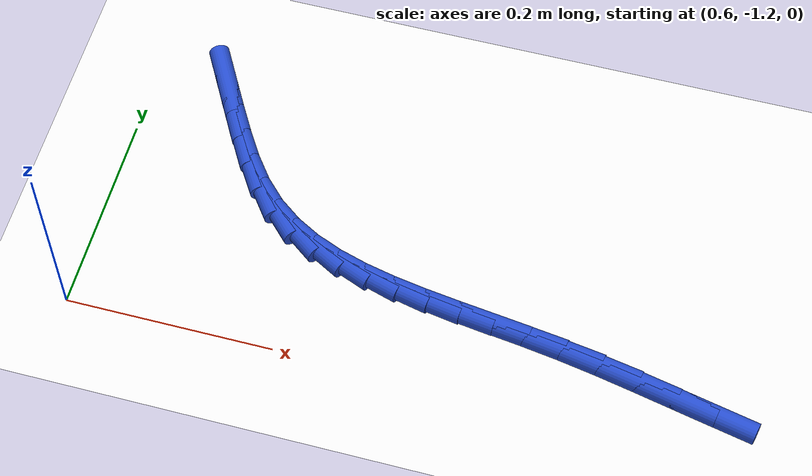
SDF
<sdf version="1.6">
 <world name="default">
  <model name="ground_plane">
   <static>1</static>
   <link name="link">
    <collision name="collision">
     <geometry><plane><normal>0 0 1</normal><size>100 100</size></plane></geometry>
     <surface><friction><ode><mu>100</mu><mu2>50</mu2></ode></friction></surface>
    </collision>
    <visual name="visual">
     <cast_shadows>0</cast_shadows>
     <geometry><plane><normal>0 0 1</normal><size>100 100</size></plane></geometry>
     <material>
      <script><uri>file://media/materials/scripts/gazebo.material</uri><name>Gazebo/WhiteGlow</name></script>
     </material>
    </visual>
   </link>
  </model>
  <model name="line">
   <link name="link_181">
    <pose>1.2033232116933266 -1.1662813901321405 0.01 0 1.57 -0.20644237467584425</pose>
    <collision name="collision">
     <geometry><cylinder><radius>0.01</radius><length>0.08</length></cylinder></geometry>
    </collision>
    <visual name="visual">
     <material>
      <script><name>Gazebo/Blue</name><uri>file://media/materials/scripts/gazebo.material</uri></script>
     </material>
     <geometry><cylinder><radius>0.01</radius><length>0.08</length></cylinder></geometry>
    </visual>
   </link>
   <link name="link_182">
    <pose>1.1665757727000643 -1.158585520987076 0.01 0 1.57 -0.20881094877719963</pose>
    <collision name="collision">
     <geometry><cylinder><radius>0.01</radius><length>0.08</length></cylinder></geometry>
    </collision>
    <visual name="visual">
     <material>
      <script><name>Gazebo/Blue</name><uri>file://media/materials/scripts/gazebo.material</uri></script>
     </material>
     <geometry><cylinder><radius>0.01</radius><length>0.08</length></cylinder></geometry>
    </visual>
   </link>
   <link name="link_183">
    <pose>1.1295371922288553 -1.1507370572933953 0.01 0 1.57 -0.19939679215880676</pose>
    <collision name="collision">
     <geometry><cylinder><radius>0.01</radius><length>0.08</length></cylinder></geometry>
    </collision>
    <visual name="visual">
     <material>
      <script><name>Gazebo/Blue</name><uri>file://media/materials/scripts/gazebo.material</uri></script>
     </material>
     <geometry><cylinder><radius>0.01</radius><length>0.08</length></cylinder></geometry>
    </visual>
   </link>
   <link name="link_184">
    <pose>1.0925941033277562 -1.1432715196523626 0.01 0 1.57 -0.17768405839916246</pose>
    <collision name="collision">
     <geometry><cylinder><radius>0.01</radius><length>0.08</length></cylinder></geometry>
    </collision>
    <visual name="visual">
     <material>
      <script><name>Gazebo/Blue</name><uri>file://media/materials/scripts/gazebo.material</uri></script>
     </material>
     <geometry><cylinder><radius>0.01</radius><length>0.08</length></cylinder></geometry>
    </visual>
   </link>
   <link name="link_185">
    <pose>1.056133012688903 -1.1367239134359863 0.01 0 1.57 -0.1490511629508548</pose>
    <collision name="collision">
     <geometry><cylinder><radius>0.01</radius><length>0.08</length></cylinder></geometry>
    </collision>
    <visual name="visual">
     <material>
      <script><name>Gazebo/Blue</name><uri>file://media/materials/scripts/gazebo.material</uri></script>
     </material>
     <geometry><cylinder><radius>0.01</radius><length>0.08</length></cylinder></geometry>
    </visual>
   </link>
   <link name="link_186">
    <pose>1.0204767504411174 -1.1313695962825676 0.01 0 1.57 -0.1308542236566244</pose>
    <collision name="collision">
     <geometry><cylinder><radius>0.01</radius><length>0.08</length></cylinder></geometry>
    </collision>
    <visual name="visual">
     <material>
      <script><name>Gazebo/Blue</name><uri>file://media/materials/scripts/gazebo.material</uri></script>
     </material>
     <geometry><cylinder><radius>0.01</radius><length>0.08</length></cylinder></geometry>
    </visual>
   </link>
   <link name="link_187">
    <pose>0.9857812663756788 -1.1268034540966045 0.01 0 1.57 -0.1270635495866914</pose>
    <collision name="collision">
     <geometry><cylinder><radius>0.01</radius><length>0.08</length></cylinder></geometry>
    </collision>
    <visual name="visual">
     <material>
      <script><name>Gazebo/Blue</name><uri>file://media/materials/scripts/gazebo.material</uri></script>
     </material>
     <geometry><cylinder><radius>0.01</radius><length>0.08</length></cylinder></geometry>
    </visual>
   </link>
   <link name="link_188">
    <pose>0.952175505288105 -1.1225102571359151 0.01 0 1.57 -0.13913495823581196</pose>
    <collision name="collision">
     <geometry><cylinder><radius>0.01</radius><length>0.08</length></cylinder></geometry>
    </collision>
    <visual name="visual">
     <material>
      <script><name>Gazebo/Blue</name><uri>file://media/materials/scripts/gazebo.material</uri></script>
     </material>
     <geometry><cylinder><radius>0.01</radius><length>0.08</length></cylinder></geometry>
    </visual>
   </link>
   <link name="link_189">
    <pose>0.919788411973915 -1.1179747756583167 0.01 0 1.57 -0.16889999968219244</pose>
    <collision name="collision">
     <geometry><cylinder><radius>0.01</radius><length>0.08</length></cylinder></geometry>
    </collision>
    <visual name="visual">
     <material>
      <script><name>Gazebo/Blue</name><uri>file://media/materials/scripts/gazebo.material</uri></script>
     </material>
     <geometry><cylinder><radius>0.01</radius><length>0.08</length></cylinder></geometry>
    </visual>
   </link>
   <link name="link_190">
    <pose>0.8887489312286277 -1.1126817799216275 0.01 0 1.57 -0.21854649103676194</pose>
    <collision name="collision">
     <geometry><cylinder><radius>0.01</radius><length>0.08</length></cylinder></geometry>
    </collision>
    <visual name="visual">
     <material>
      <script><name>Gazebo/Blue</name><uri>file://media/materials/scripts/gazebo.material</uri></script>
     </material>
     <geometry><cylinder><radius>0.01</radius><length>0.08</length></cylinder></geometry>
    </visual>
   </link>
   <link name="link_191">
    <pose>0.8591860078477618 -1.1061160401836656 0.01 0 1.57 -0.2903566965722945</pose>
    <collision name="collision">
     <geometry><cylinder><radius>0.01</radius><length>0.08</length></cylinder></geometry>
    </collision>
    <visual name="visual">
     <material>
      <script><name>Gazebo/Blue</name><uri>file://media/materials/scripts/gazebo.material</uri></script>
     </material>
     <geometry><cylinder><radius>0.01</radius><length>0.08</length></cylinder></geometry>
    </visual>
   </link>
   <link name="link_192">
    <pose>0.8312285866268354 -1.0977623267022487 0.01 0 1.57 -0.38600814819402246</pose>
    <collision name="collision">
     <geometry><cylinder><radius>0.01</radius><length>0.08</length></cylinder></geometry>
    </collision>
    <visual name="visual">
     <material>
      <script><name>Gazebo/Blue</name><uri>file://media/materials/scripts/gazebo.material</uri></script>
     </material>
     <geometry><cylinder><radius>0.01</radius><length>0.08</length></cylinder></geometry>
    </visual>
   </link>
   <link name="link_193">
    <pose>0.8050056123613685 -1.0871054097351949 0.01 0 1.57 -0.5052850477088519</pose>
    <collision name="collision">
     <geometry><cylinder><radius>0.01</radius><length>0.08</length></cylinder></geometry>
    </collision>
    <visual name="visual">
     <material>
      <script><name>Gazebo/Blue</name><uri>file://media/materials/scripts/gazebo.material</uri></script>
     </material>
     <geometry><cylinder><radius>0.01</radius><length>0.08</length></cylinder></geometry>
    </visual>
   </link>
   <link name="link_194">
    <pose>0.7806460298468794 -1.0736300595403223 0.01 0 1.57 -0.6444612126691147</pose>
    <collision name="collision">
     <geometry><cylinder><radius>0.01</radius><length>0.08</length></cylinder></geometry>
    </collision>
    <visual name="visual">
     <material>
      <script><name>Gazebo/Blue</name><uri>file://media/materials/scripts/gazebo.material</uri></script>
     </material>
     <geometry><cylinder><radius>0.01</radius><length>0.08</length></cylinder></geometry>
    </visual>
   </link>
   <link name="link_195">
    <pose>0.7582787838788865 -1.0568210463754482 0.01 0 1.57 -0.7949676651017887</pose>
    <collision name="collision">
     <geometry><cylinder><radius>0.01</radius><length>0.08</length></cylinder></geometry>
    </collision>
    <visual name="visual">
     <material>
      <script><name>Gazebo/Blue</name><uri>file://media/materials/scripts/gazebo.material</uri></script>
     </material>
     <geometry><cylinder><radius>0.01</radius><length>0.08</length></cylinder></geometry>
    </visual>
   </link>
   <link name="link_196">
    <pose>0.7380275221525144 -1.0361784387506694 0.01 0 1.57 -0.9236789496645033</pose>
    <collision name="collision">
     <geometry><cylinder><radius>0.01</radius><length>0.08</length></cylinder></geometry>
    </collision>
    <visual name="visual">
     <material>
      <script><name>Gazebo/Blue</name><uri>file://media/materials/scripts/gazebo.material</uri></script>
     </material>
     <geometry><cylinder><radius>0.01</radius><length>0.08</length></cylinder></geometry>
    </visual>
   </link>
   <link name="link_197">
    <pose>0.719745033340738 -1.0119845576055522 0.01 0 1.57 -1.0012306074663284</pose>
    <collision name="collision">
     <geometry><cylinder><radius>0.01</radius><length>0.08</length></cylinder></geometry>
    </collision>
    <visual name="visual">
     <material>
      <script><name>Gazebo/Blue</name><uri>file://media/materials/scripts/gazebo.material</uri></script>
     </material>
     <geometry><cylinder><radius>0.01</radius><length>0.08</length></cylinder></geometry>
    </visual>
   </link>
   <link name="link_198">
    <pose>0.7028892604056444 -0.9856620551640233 0.01 0 1.57 -1.0374853306802212</pose>
    <collision name="collision">
     <geometry><cylinder><radius>0.01</radius><length>0.08</length></cylinder></geometry>
    </collision>
    <visual name="visual">
     <material>
      <script><name>Gazebo/Blue</name><uri>file://media/materials/scripts/gazebo.material</uri></script>
     </material>
     <geometry><cylinder><radius>0.01</radius><length>0.08</length></cylinder></geometry>
    </visual>
   </link>
   <link name="link_199">
    <pose>0.6869103447678541 -0.9585962735633804 0.01 0 1.57 -1.0529385517357555</pose>
    <collision name="collision">
     <geometry><cylinder><radius>0.01</radius><length>0.08</length></cylinder></geometry>
    </collision>
    <visual name="visual">
     <material>
      <script><name>Gazebo/Blue</name><uri>file://media/materials/scripts/gazebo.material</uri></script>
     </material>
     <geometry><cylinder><radius>0.01</radius><length>0.08</length></cylinder></geometry>
    </visual>
   </link>
   <link name="link_200">
    <pose>0.6714041489163789 -0.9313790898509253 0.01 0 1.57 -1.05425908976609</pose>
    <collision name="collision">
     <geometry><cylinder><radius>0.01</radius><length>0.08</length></cylinder></geometry>
    </collision>
    <visual name="visual">
     <material>
      <script><name>Gazebo/Blue</name><uri>file://media/materials/scripts/gazebo.material</uri></script>
     </material>
     <geometry><cylinder><radius>0.01</radius><length>0.08</length></cylinder></geometry>
    </visual>
   </link>
  </model>
 </world>
</sdf>
